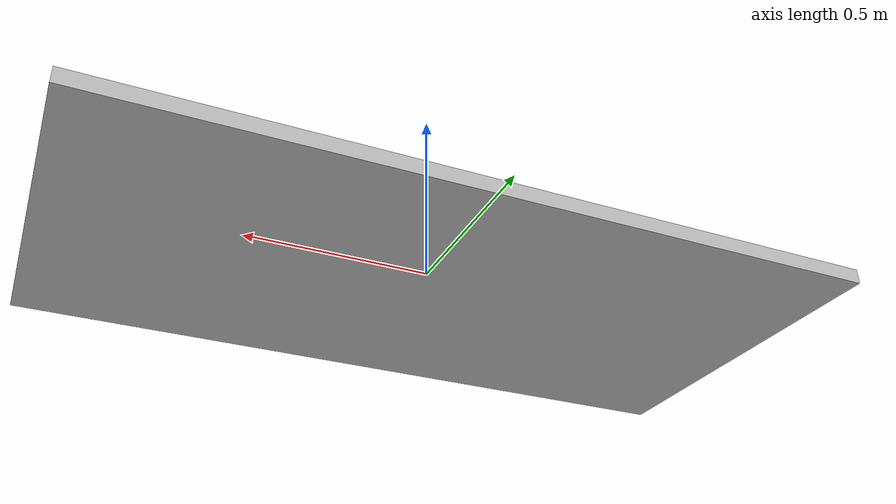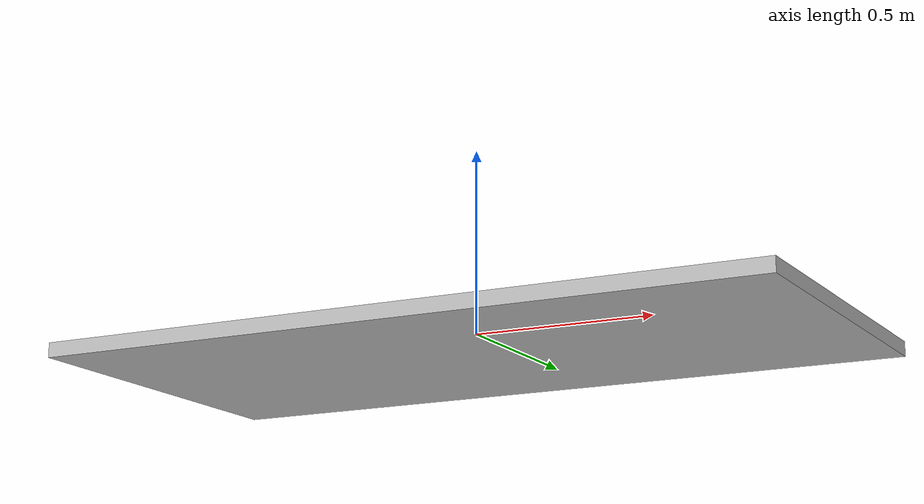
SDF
<?xml version="1.0"?>
<sdf version="1.8">
  <model name="table">
    <link name="table_base">
      <pose>0 0 -0.02 0 0 0</pose>
      <inertial>
        <pose>0 0 0 0 0 0</pose>
        <mass>1</mass>
        <inertia>
            <ixx>0.0835</ixx>
            <ixy>0</ixy>
            <ixz>0</ixz>
            <iyy>0.1667</iyy>
            <iyz>0</iyz>
            <izz>0.0835</izz>
        </inertia>
      </inertial>
      <visual name = "base_visual">
        <pose>0 0 -0.02 0 0 0</pose>
        <geometry>
          <box>
            <size>2.0 1.0 0.04</size>
          </box>
        </geometry>
      </visual>
      <collision name = "base_collision">
        <pose>0 0 -0.02 0 0 0</pose>
        <geometry>
          <box>
            <size>2.0 1.2 0.04</size>
          </box>
        </geometry>
        <drake:proximity_properties>
          <drake:rigid_hydroelastic/>
          <drake:mesh_resolution_hint>0.02</drake:mesh_resolution_hint>
          <drake:mu_static>0.1</drake:mu_static>
          <drake:mu_dynamic>0.1</drake:mu_dynamic>
        </drake:proximity_properties>
      </collision>
    </link>
  </model>
</sdf>
